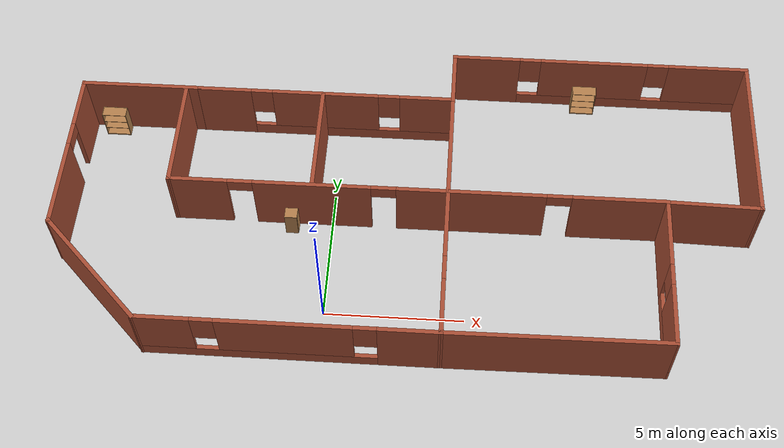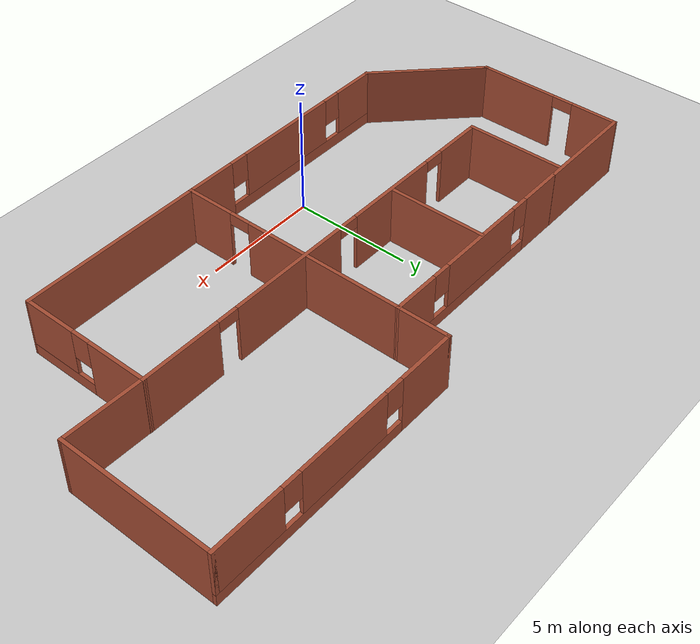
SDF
<sdf version="1.7">
 <world name="default">
  <light name="sun" type="directional">
   <pose>0 0 10 0 -0 0</pose>
   <diffuse>0.8 0.8 0.8 1</diffuse>
   <specular>0.2 0.2 0.2 1</specular>
   <attenuation>
    <range>1000</range>
    <constant>0.9</constant>
    <linear>0.01</linear>
    <quadratic>0.001</quadratic>
   </attenuation>
   <direction>-0.5 0.1 -0.9</direction>
   <spot><inner_angle>0</inner_angle><outer_angle>0</outer_angle><falloff>0</falloff></spot>
  </light>
  <model name="ground_plane">
   <static>1</static>
   <link name="link">
    <collision name="collision">
     <geometry><plane><normal>0 0 1</normal><size>100 100</size></plane></geometry>
     <surface>
      <contact><collide_bitmask>65535</collide_bitmask></contact>
      <friction><ode><mu>100</mu><mu2>50</mu2></ode></friction>
     </surface>
    </collision>
    <visual name="visual">
     <cast_shadows>0</cast_shadows>
     <geometry><plane><normal>0 0 1</normal><size>100 100</size></plane></geometry>
     <material>
      <script><uri>file://media/materials/scripts/gazebo.material</uri><name>Gazebo/Grey</name></script>
     </material>
    </visual>
   </link>
  </model>
  <gravity>0 0 -9.8</gravity>
  <magnetic_field>6e-06 2.3e-05 -4.2e-05</magnetic_field>
  <atmosphere type="adiabatic"/>
  <physics type="ode">
   <max_step_size>0.001</max_step_size>
   <real_time_factor>1</real_time_factor>
   <real_time_update_rate>1000</real_time_update_rate>
  </physics>
  <scene><ambient>0.4 0.4 0.4 1</ambient><background>0.7 0.7 0.7 1</background><shadows>1</shadows></scene>
  <spherical_coordinates>
   <surface_model>EARTH_WGS84</surface_model>
   <latitude_deg>0</latitude_deg>
   <longitude_deg>0</longitude_deg>
   <elevation>0</elevation>
   <heading_deg>0</heading_deg>
  </spherical_coordinates>
  <model name="simpleworld">
   <pose>2.77449 4.13979 0 0 -0 0</pose>
   <link name="Wall_10">
    <pose>-3.3355 3.88331 0 0 -0 0.001513</pose>
    <visual name="Wall_10_Visual_0">
     <pose>-3.83865 0 1.25 0 -0 0</pose>
     <geometry><box><size>2.02935 0.15 2.5</size></box></geometry>
     <material>
      <script><uri>file://media/materials/scripts/gazebo.material</uri><name>Gazebo/Bricks</name></script>
      <ambient>1 1 1 1</ambient>
     </material>
     <meta><layer>0</layer></meta>
    </visual>
    <collision name="Wall_10_Collision_0">
     <geometry><box><size>2.02935 0.15 2.5</size></box></geometry>
     <pose>-3.83865 0 1.25 0 -0 0</pose>
    </collision>
    <visual name="Wall_10_Visual_1">
     <pose>1.01467 0 0.25 0 -0 0</pose>
     <geometry><box><size>7.67729 0.15 0.5</size></box></geometry>
     <material>
      <script><uri>file://media/materials/scripts/gazebo.material</uri><name>Gazebo/Bricks</name></script>
      <ambient>1 1 1 1</ambient>
     </material>
     <meta><layer>0</layer></meta>
    </visual>
    <collision name="Wall_10_Collision_1">
     <geometry><box><size>7.67729 0.15 0.5</size></box></geometry>
     <pose>1.01467 0 0.25 0 -0 0</pose>
    </collision>
    <visual name="Wall_10_Visual_2">
     <pose>-0.026059 0 1.5 0 -0 0</pose>
     <geometry><box><size>3.99582 0.15 2</size></box></geometry>
     <material>
      <script><uri>file://media/materials/scripts/gazebo.material</uri><name>Gazebo/Bricks</name></script>
      <ambient>1 1 1 1</ambient>
     </material>
     <meta><layer>0</layer></meta>
    </visual>
    <collision name="Wall_10_Collision_2">
     <geometry><box><size>3.99582 0.15 2</size></box></geometry>
     <pose>-0.026059 0 1.5 0 -0 0</pose>
    </collision>
    <visual name="Wall_10_Visual_3">
     <pose>3.81259 0 1.5 0 -0 0</pose>
     <geometry><box><size>2.08147 0.15 2</size></box></geometry>
     <material>
      <script><uri>file://media/materials/scripts/gazebo.material</uri><name>Gazebo/Bricks</name></script>
      <ambient>1 1 1 1</ambient>
     </material>
     <meta><layer>0</layer></meta>
    </visual>
    <collision name="Wall_10_Collision_3">
     <geometry><box><size>2.08147 0.15 2</size></box></geometry>
     <pose>3.81259 0 1.5 0 -0 0</pose>
    </collision>
    <visual name="Wall_10_Visual_4">
     <pose>-2.42397 0 1.9 0 -0 0</pose>
     <geometry><box><size>0.8 0.15 1.2</size></box></geometry>
     <material>
      <script><uri>file://media/materials/scripts/gazebo.material</uri><name>Gazebo/Bricks</name></script>
      <ambient>1 1 1 1</ambient>
     </material>
     <meta><layer>0</layer></meta>
    </visual>
    <collision name="Wall_10_Collision_4">
     <geometry><box><size>0.8 0.15 1.2</size></box></geometry>
     <pose>-2.42397 0 1.9 0 -0 0</pose>
    </collision>
    <visual name="Wall_10_Visual_5">
     <pose>2.37185 0 1.9 0 -0 0</pose>
     <geometry><box><size>0.8 0.15 1.2</size></box></geometry>
     <material>
      <script><uri>file://media/materials/scripts/gazebo.material</uri><name>Gazebo/Bricks</name></script>
      <ambient>1 1 1 1</ambient>
     </material>
     <meta><layer>0</layer></meta>
    </visual>
    <collision name="Wall_10_Collision_5">
     <geometry><box><size>0.8 0.15 1.2</size></box></geometry>
     <pose>2.37185 0 1.9 0 -0 0</pose>
    </collision>
   </link>
   <link name="Wall_11">
    <pose>1.44282 -1.03447 0 0 -0 -1.5708</pose>
    <visual name="Wall_11_Visual_0">
     <pose>-1.52195 0 1.25 0 -0 0</pose>
     <geometry><box><size>6.95609 0.15 2.5</size></box></geometry>
     <material>
      <script><uri>file://media/materials/scripts/gazebo.material</uri><name>Gazebo/Bricks</name></script>
      <ambient>1 1 1 1</ambient>
     </material>
     <meta><layer>0</layer></meta>
    </visual>
    <collision name="Wall_11_Collision_0">
     <geometry><box><size>6.95609 0.15 2.5</size></box></geometry>
     <pose>-1.52195 0 1.25 0 -0 0</pose>
    </collision>
    <visual name="Wall_11_Visual_1">
     <pose>3.92805 0 1.25 0 -0 0</pose>
     <geometry><box><size>2.14391 0.15 2.5</size></box></geometry>
     <material>
      <script><uri>file://media/materials/scripts/gazebo.material</uri><name>Gazebo/Bricks</name></script>
      <ambient>1 1 1 1</ambient>
     </material>
     <meta><layer>0</layer></meta>
    </visual>
    <collision name="Wall_11_Collision_1">
     <geometry><box><size>2.14391 0.15 2.5</size></box></geometry>
     <pose>3.92805 0 1.25 0 -0 0</pose>
    </collision>
    <visual name="Wall_11_Visual_2">
     <pose>2.40609 0 2.25 0 -0 0</pose>
     <geometry><box><size>0.9 0.15 0.5</size></box></geometry>
     <material>
      <script><uri>file://media/materials/scripts/gazebo.material</uri><name>Gazebo/Bricks</name></script>
      <ambient>1 1 1 1</ambient>
     </material>
     <meta><layer>0</layer></meta>
    </visual>
    <collision name="Wall_11_Collision_2">
     <geometry><box><size>0.9 0.15 0.5</size></box></geometry>
     <pose>2.40609 0 2.25 0 -0 0</pose>
    </collision>
   </link>
   <link name="Wall_12">
    <pose>-3.73218 -5.95947 0 0 -0 3.14159</pose>
    <visual name="Wall_12_Visual_0">
     <pose>-4.14326 0 1.25 0 -0 0</pose>
     <geometry><box><size>2.21349 0.15 2.5</size></box></geometry>
     <material>
      <script><uri>file://media/materials/scripts/gazebo.material</uri><name>Gazebo/Bricks</name></script>
      <ambient>1 1 1 1</ambient>
     </material>
     <meta><layer>0</layer></meta>
    </visual>
    <collision name="Wall_12_Collision_0">
     <geometry><box><size>2.21349 0.15 2.5</size></box></geometry>
     <pose>-4.14326 0 1.25 0 -0 0</pose>
    </collision>
    <visual name="Wall_12_Visual_1">
     <pose>1.10674 0 0.25 0 -0 0</pose>
     <geometry><box><size>8.28651 0.15 0.5</size></box></geometry>
     <material>
      <script><uri>file://media/materials/scripts/gazebo.material</uri><name>Gazebo/Bricks</name></script>
      <ambient>1 1 1 1</ambient>
     </material>
     <meta><layer>0</layer></meta>
    </visual>
    <collision name="Wall_12_Collision_1">
     <geometry><box><size>8.28651 0.15 0.5</size></box></geometry>
     <pose>1.10674 0 0.25 0 -0 0</pose>
    </collision>
    <visual name="Wall_12_Visual_2">
     <pose>0.102389 0 1.5 0 -0 0</pose>
     <geometry><box><size>4.67781 0.15 2</size></box></geometry>
     <material>
      <script><uri>file://media/materials/scripts/gazebo.material</uri><name>Gazebo/Bricks</name></script>
      <ambient>1 1 1 1</ambient>
     </material>
     <meta><layer>0</layer></meta>
    </visual>
    <collision name="Wall_12_Collision_2">
     <geometry><box><size>4.67781 0.15 2</size></box></geometry>
     <pose>0.102389 0 1.5 0 -0 0</pose>
    </collision>
    <visual name="Wall_12_Visual_3">
     <pose>4.24565 0 1.5 0 -0 0</pose>
     <geometry><box><size>2.00871 0.15 2</size></box></geometry>
     <material>
      <script><uri>file://media/materials/scripts/gazebo.material</uri><name>Gazebo/Bricks</name></script>
      <ambient>1 1 1 1</ambient>
     </material>
     <meta><layer>0</layer></meta>
    </visual>
    <collision name="Wall_12_Collision_3">
     <geometry><box><size>2.00871 0.15 2</size></box></geometry>
     <pose>4.24565 0 1.5 0 -0 0</pose>
    </collision>
    <visual name="Wall_12_Visual_4">
     <pose>-2.63651 0 1.9 0 -0 0</pose>
     <geometry><box><size>0.8 0.15 1.2</size></box></geometry>
     <material>
      <script><uri>file://media/materials/scripts/gazebo.material</uri><name>Gazebo/Bricks</name></script>
      <ambient>1 1 1 1</ambient>
     </material>
     <meta><layer>0</layer></meta>
    </visual>
    <collision name="Wall_12_Collision_4">
     <geometry><box><size>0.8 0.15 1.2</size></box></geometry>
     <pose>-2.63651 0 1.9 0 -0 0</pose>
    </collision>
    <visual name="Wall_12_Visual_5">
     <pose>2.84129 0 1.9 0 -0 0</pose>
     <geometry><box><size>0.8 0.15 1.2</size></box></geometry>
     <material>
      <script><uri>file://media/materials/scripts/gazebo.material</uri><name>Gazebo/Bricks</name></script>
      <ambient>1 1 1 1</ambient>
     </material>
     <meta><layer>0</layer></meta>
    </visual>
    <collision name="Wall_12_Collision_5">
     <geometry><box><size>0.8 0.15 1.2</size></box></geometry>
     <pose>2.84129 0 1.9 0 -0 0</pose>
    </collision>
   </link>
   <link name="Wall_13">
    <collision name="Wall_13_Collision">
     <geometry><box><size>5.25 0.15 2.5</size></box></geometry>
     <pose>0 0 1.25 0 -0 0</pose>
    </collision>
    <visual name="Wall_13_Visual">
     <pose>0 0 1.25 0 -0 0</pose>
     <geometry><box><size>5.25 0.15 2.5</size></box></geometry>
     <material>
      <script><uri>file://media/materials/scripts/gazebo.material</uri><name>Gazebo/Bricks</name></script>
      <ambient>1 1 1 1</ambient>
     </material>
     <meta><layer>0</layer></meta>
    </visual>
    <pose>-10.7103 -4.15634 0 0 -0 2.35619</pose>
   </link>
   <link name="Wall_14">
    <pose>-12.5134 0.759277 0 0 -0 1.5708</pose>
    <visual name="Wall_14_Visual_0">
     <pose>-1.47366 0 1.25 0 -0 0</pose>
     <geometry><box><size>3.42767 0.15 2.5</size></box></geometry>
     <material>
      <script><uri>file://media/materials/scripts/gazebo.material</uri><name>Gazebo/Bricks</name></script>
      <ambient>1 1 1 1</ambient>
     </material>
     <meta><layer>0</layer></meta>
    </visual>
    <collision name="Wall_14_Collision_0">
     <geometry><box><size>3.42767 0.15 2.5</size></box></geometry>
     <pose>-1.47366 0 1.25 0 -0 0</pose>
    </collision>
    <visual name="Wall_14_Visual_1">
     <pose>2.16384 0 1.25 0 -0 0</pose>
     <geometry><box><size>2.04733 0.15 2.5</size></box></geometry>
     <material>
      <script><uri>file://media/materials/scripts/gazebo.material</uri><name>Gazebo/Bricks</name></script>
      <ambient>1 1 1 1</ambient>
     </material>
     <meta><layer>0</layer></meta>
    </visual>
    <collision name="Wall_14_Collision_1">
     <geometry><box><size>2.04733 0.15 2.5</size></box></geometry>
     <pose>2.16384 0 1.25 0 -0 0</pose>
    </collision>
    <visual name="Wall_14_Visual_2">
     <pose>0.690172 0 2.25 0 -0 0</pose>
     <geometry><box><size>0.9 0.15 0.5</size></box></geometry>
     <material>
      <script><uri>file://media/materials/scripts/gazebo.material</uri><name>Gazebo/Bricks</name></script>
      <ambient>1 1 1 1</ambient>
     </material>
     <meta><layer>0</layer></meta>
    </visual>
    <collision name="Wall_14_Collision_2">
     <geometry><box><size>0.9 0.15 0.5</size></box></geometry>
     <pose>0.690172 0 2.25 0 -0 0</pose>
    </collision>
   </link>
   <link name="Wall_15">
    <collision name="Wall_15_Collision">
     <geometry><box><size>4.52794 0.15 2.5</size></box></geometry>
     <pose>0 0 1.25 0 -0 0</pose>
    </collision>
    <visual name="Wall_15_Visual">
     <pose>0 0 1.25 0 -0 0</pose>
     <geometry><box><size>4.52794 0.15 2.5</size></box></geometry>
     <material>
      <script><uri>file://media/materials/scripts/gazebo.material</uri><name>Gazebo/Bricks</name></script>
      <ambient>1 1 1 1</ambient>
     </material>
     <meta><layer>0</layer></meta>
    </visual>
    <pose>-10.3245 3.87754 0 0 -0 0.002633</pose>
   </link>
   <link name="Wall_17">
    <collision name="Wall_17_Collision">
     <geometry><box><size>4.25 0.15 2.5</size></box></geometry>
     <pose>0 0 1.25 0 -0 0</pose>
    </collision>
    <visual name="Wall_17_Visual">
     <pose>0 0 1.25 0 -0 0</pose>
     <geometry><box><size>4.25 0.15 2.5</size></box></geometry>
     <material>
      <script><uri>file://media/materials/scripts/gazebo.material</uri><name>Gazebo/Bricks</name></script>
      <ambient>1 1 1 1</ambient>
     </material>
     <meta><layer>0</layer></meta>
    </visual>
    <pose>-8.6146 1.75039 0 0 -0 -1.5708</pose>
   </link>
   <link name="Wall_18">
    <pose>0.310398 -0.284861 0 0 -0 0.001653</pose>
    <visual name="Wall_18_Visual_0">
     <pose>-7.90218 0 1.25 0 -0 0</pose>
     <geometry><box><size>2.19564 0.15 2.5</size></box></geometry>
     <material>
      <script><uri>file://media/materials/scripts/gazebo.material</uri><name>Gazebo/Bricks</name></script>
      <ambient>1 1 1 1</ambient>
     </material>
     <meta><layer>0</layer></meta>
    </visual>
    <collision name="Wall_18_Collision_0">
     <geometry><box><size>2.19564 0.15 2.5</size></box></geometry>
     <pose>-7.90218 0 1.25 0 -0 0</pose>
    </collision>
    <visual name="Wall_18_Visual_1">
     <pose>-3.76951 0 1.25 0 -0 0</pose>
     <geometry><box><size>4.26971 0.15 2.5</size></box></geometry>
     <material>
      <script><uri>file://media/materials/scripts/gazebo.material</uri><name>Gazebo/Bricks</name></script>
      <ambient>1 1 1 1</ambient>
     </material>
     <meta><layer>0</layer></meta>
    </visual>
    <collision name="Wall_18_Collision_1">
     <geometry><box><size>4.26971 0.15 2.5</size></box></geometry>
     <pose>-3.76951 0 1.25 0 -0 0</pose>
    </collision>
    <visual name="Wall_18_Visual_2">
     <pose>1.95374 0 1.25 0 -0 0</pose>
     <geometry><box><size>5.37679 0.15 2.5</size></box></geometry>
     <material>
      <script><uri>file://media/materials/scripts/gazebo.material</uri><name>Gazebo/Bricks</name></script>
      <ambient>1 1 1 1</ambient>
     </material>
     <meta><layer>0</layer></meta>
    </visual>
    <collision name="Wall_18_Collision_2">
     <geometry><box><size>5.37679 0.15 2.5</size></box></geometry>
     <pose>1.95374 0 1.25 0 -0 0</pose>
    </collision>
    <visual name="Wall_18_Visual_3">
     <pose>7.27107 0 1.25 0 -0 0</pose>
     <geometry><box><size>3.45787 0.15 2.5</size></box></geometry>
     <material>
      <script><uri>file://media/materials/scripts/gazebo.material</uri><name>Gazebo/Bricks</name></script>
      <ambient>1 1 1 1</ambient>
     </material>
     <meta><layer>0</layer></meta>
    </visual>
    <collision name="Wall_18_Collision_3">
     <geometry><box><size>3.45787 0.15 2.5</size></box></geometry>
     <pose>7.27107 0 1.25 0 -0 0</pose>
    </collision>
    <visual name="Wall_18_Visual_4">
     <pose>-6.35436 0 2.25 0 -0 0</pose>
     <geometry><box><size>0.9 0.15 0.5</size></box></geometry>
     <material>
      <script><uri>file://media/materials/scripts/gazebo.material</uri><name>Gazebo/Bricks</name></script>
      <ambient>1 1 1 1</ambient>
     </material>
     <meta><layer>0</layer></meta>
    </visual>
    <collision name="Wall_18_Collision_4">
     <geometry><box><size>0.9 0.15 0.5</size></box></geometry>
     <pose>-6.35436 0 2.25 0 -0 0</pose>
    </collision>
    <visual name="Wall_18_Visual_5">
     <pose>-1.18465 0 2.25 0 -0 0</pose>
     <geometry><box><size>0.9 0.15 0.5</size></box></geometry>
     <material>
      <script><uri>file://media/materials/scripts/gazebo.material</uri><name>Gazebo/Bricks</name></script>
      <ambient>1 1 1 1</ambient>
     </material>
     <meta><layer>0</layer></meta>
    </visual>
    <collision name="Wall_18_Collision_5">
     <geometry><box><size>0.9 0.15 0.5</size></box></geometry>
     <pose>-1.18465 0 2.25 0 -0 0</pose>
    </collision>
    <visual name="Wall_18_Visual_6">
     <pose>5.09213 0 2.25 0 -0 0</pose>
     <geometry><box><size>0.9 0.15 0.5</size></box></geometry>
     <material>
      <script><uri>file://media/materials/scripts/gazebo.material</uri><name>Gazebo/Bricks</name></script>
      <ambient>1 1 1 1</ambient>
     </material>
     <meta><layer>0</layer></meta>
    </visual>
    <collision name="Wall_18_Collision_6">
     <geometry><box><size>0.9 0.15 0.5</size></box></geometry>
     <pose>5.09213 0 2.25 0 -0 0</pose>
    </collision>
   </link>
   <link name="Wall_19">
    <pose>9.2354 -3.08486 0 0 -0 -1.5708</pose>
    <visual name="Wall_19_Visual_0">
     <pose>-1.56451 0 1.25 0 -0 0</pose>
     <geometry><box><size>2.65048 0.15 2.5</size></box></geometry>
     <material>
      <script><uri>file://media/materials/scripts/gazebo.material</uri><name>Gazebo/Bricks</name></script>
      <ambient>1 1 1 1</ambient>
     </material>
     <meta><layer>0</layer></meta>
    </visual>
    <collision name="Wall_19_Collision_0">
     <geometry><box><size>2.65048 0.15 2.5</size></box></geometry>
     <pose>-1.56451 0 1.25 0 -0 0</pose>
    </collision>
    <visual name="Wall_19_Visual_1">
     <pose>1.32524 0 0.25 0 -0 0</pose>
     <geometry><box><size>3.12902 0.15 0.5</size></box></geometry>
     <material>
      <script><uri>file://media/materials/scripts/gazebo.material</uri><name>Gazebo/Bricks</name></script>
      <ambient>1 1 1 1</ambient>
     </material>
     <meta><layer>0</layer></meta>
    </visual>
    <collision name="Wall_19_Collision_1">
     <geometry><box><size>3.12902 0.15 0.5</size></box></geometry>
     <pose>1.32524 0 0.25 0 -0 0</pose>
    </collision>
    <visual name="Wall_19_Visual_2">
     <pose>1.72524 0 1.5 0 -0 0</pose>
     <geometry><box><size>2.32902 0.15 2</size></box></geometry>
     <material>
      <script><uri>file://media/materials/scripts/gazebo.material</uri><name>Gazebo/Bricks</name></script>
      <ambient>1 1 1 1</ambient>
     </material>
     <meta><layer>0</layer></meta>
    </visual>
    <collision name="Wall_19_Collision_2">
     <geometry><box><size>2.32902 0.15 2</size></box></geometry>
     <pose>1.72524 0 1.5 0 -0 0</pose>
    </collision>
    <visual name="Wall_19_Visual_3">
     <pose>0.160725 0 1.9 0 -0 0</pose>
     <geometry><box><size>0.8 0.15 1.2</size></box></geometry>
     <material>
      <script><uri>file://media/materials/scripts/gazebo.material</uri><name>Gazebo/Bricks</name></script>
      <ambient>1 1 1 1</ambient>
     </material>
     <meta><layer>0</layer></meta>
    </visual>
    <collision name="Wall_19_Collision_3">
     <geometry><box><size>0.8 0.15 1.2</size></box></geometry>
     <pose>0.160725 0 1.9 0 -0 0</pose>
    </collision>
   </link>
   <link name="Wall_20">
    <collision name="Wall_20_Collision">
     <geometry><box><size>7.94281 0.15 2.5</size></box></geometry>
     <pose>0 0 1.25 0 -0 0</pose>
    </collision>
    <visual name="Wall_20_Visual">
     <pose>0 0 1.25 0 -0 0</pose>
     <geometry><box><size>7.94281 0.15 2.5</size></box></geometry>
     <material>
      <script><uri>file://media/materials/scripts/gazebo.material</uri><name>Gazebo/Bricks</name></script>
      <ambient>1 1 1 1</ambient>
     </material>
     <meta><layer>0</layer></meta>
    </visual>
    <pose>5.33911 -5.92954 0 0 -0 -3.13391</pose>
   </link>
   <link name="Wall_22">
    <collision name="Wall_22_Collision">
     <geometry><box><size>4.25 0.15 2.5</size></box></geometry>
     <pose>0 0 1.25 0 -0 0</pose>
    </collision>
    <visual name="Wall_22_Visual">
     <pose>0 0 1.25 0 -0 0</pose>
     <geometry><box><size>4.25 0.15 2.5</size></box></geometry>
     <material>
      <script><uri>file://media/materials/scripts/gazebo.material</uri><name>Gazebo/Bricks</name></script>
      <ambient>1 1 1 1</ambient>
     </material>
     <meta><layer>0</layer></meta>
    </visual>
    <pose>-3.44479 1.78053 0 0 -0 1.5708</pose>
   </link>
   <link name="Wall_24">
    <collision name="Wall_24_Collision">
     <geometry><box><size>2.25 0.15 2.5</size></box></geometry>
     <pose>0 0 1.25 0 -0 0</pose>
    </collision>
    <visual name="Wall_24_Visual">
     <pose>0 0 1.25 0 -0 0</pose>
     <geometry><box><size>2.25 0.15 2.5</size></box></geometry>
     <material>
      <script><uri>file://media/materials/scripts/gazebo.material</uri><name>Gazebo/Bricks</name></script>
      <ambient>1 1 1 1</ambient>
     </material>
     <meta><layer>0</layer></meta>
    </visual>
    <pose>1.44282 4.94053 0 0 -0 1.5708</pose>
   </link>
   <link name="Wall_25">
    <pose>6.99282 5.99053 0 0 -0 0</pose>
    <visual name="Wall_25_Visual_0">
     <pose>-4.33984 0 1.25 0 -0 0</pose>
     <geometry><box><size>2.57032 0.15 2.5</size></box></geometry>
     <material>
      <script><uri>file://media/materials/scripts/gazebo.material</uri><name>Gazebo/Bricks</name></script>
      <ambient>1 1 1 1</ambient>
     </material>
     <meta><layer>0</layer></meta>
    </visual>
    <collision name="Wall_25_Collision_0">
     <geometry><box><size>2.57032 0.15 2.5</size></box></geometry>
     <pose>-4.33984 0 1.25 0 -0 0</pose>
    </collision>
    <visual name="Wall_25_Visual_1">
     <pose>1.28516 0 0.25 0 -0 0</pose>
     <geometry><box><size>8.67968 0.15 0.5</size></box></geometry>
     <material>
      <script><uri>file://media/materials/scripts/gazebo.material</uri><name>Gazebo/Bricks</name></script>
      <ambient>1 1 1 1</ambient>
     </material>
     <meta><layer>0</layer></meta>
    </visual>
    <collision name="Wall_25_Collision_1">
     <geometry><box><size>8.67968 0.15 0.5</size></box></geometry>
     <pose>1.28516 0 0.25 0 -0 0</pose>
    </collision>
    <visual name="Wall_25_Visual_2">
     <pose>-0.223764 0 1.5 0 -0 0</pose>
     <geometry><box><size>4.06183 0.15 2</size></box></geometry>
     <material>
      <script><uri>file://media/materials/scripts/gazebo.material</uri><name>Gazebo/Bricks</name></script>
      <ambient>1 1 1 1</ambient>
     </material>
     <meta><layer>0</layer></meta>
    </visual>
    <collision name="Wall_25_Collision_2">
     <geometry><box><size>4.06183 0.15 2</size></box></geometry>
     <pose>-0.223764 0 1.5 0 -0 0</pose>
    </collision>
    <visual name="Wall_25_Visual_3">
     <pose>4.11608 0 1.5 0 -0 0</pose>
     <geometry><box><size>3.01785 0.15 2</size></box></geometry>
     <material>
      <script><uri>file://media/materials/scripts/gazebo.material</uri><name>Gazebo/Bricks</name></script>
      <ambient>1 1 1 1</ambient>
     </material>
     <meta><layer>0</layer></meta>
    </visual>
    <collision name="Wall_25_Collision_3">
     <geometry><box><size>3.01785 0.15 2</size></box></geometry>
     <pose>4.11608 0 1.5 0 -0 0</pose>
    </collision>
    <visual name="Wall_25_Visual_4">
     <pose>-2.65468 0 1.9 0 -0 0</pose>
     <geometry><box><size>0.8 0.15 1.2</size></box></geometry>
     <material>
      <script><uri>file://media/materials/scripts/gazebo.material</uri><name>Gazebo/Bricks</name></script>
      <ambient>1 1 1 1</ambient>
     </material>
     <meta><layer>0</layer></meta>
    </visual>
    <collision name="Wall_25_Collision_4">
     <geometry><box><size>0.8 0.15 1.2</size></box></geometry>
     <pose>-2.65468 0 1.9 0 -0 0</pose>
    </collision>
    <visual name="Wall_25_Visual_5">
     <pose>2.20715 0 1.9 0 -0 0</pose>
     <geometry><box><size>0.8 0.15 1.2</size></box></geometry>
     <material>
      <script><uri>file://media/materials/scripts/gazebo.material</uri><name>Gazebo/Bricks</name></script>
      <ambient>1 1 1 1</ambient>
     </material>
     <meta><layer>0</layer></meta>
    </visual>
    <collision name="Wall_25_Collision_5">
     <geometry><box><size>0.8 0.15 1.2</size></box></geometry>
     <pose>2.20715 0 1.9 0 -0 0</pose>
    </collision>
   </link>
   <link name="Wall_26">
    <collision name="Wall_26_Collision">
     <geometry><box><size>6.5 0.15 2.5</size></box></geometry>
     <pose>0 0 1.25 0 -0 0</pose>
    </collision>
    <visual name="Wall_26_Visual">
     <pose>0 0 1.25 0 -0 0</pose>
     <geometry><box><size>6.5 0.15 2.5</size></box></geometry>
     <material>
      <script><uri>file://media/materials/scripts/gazebo.material</uri><name>Gazebo/Bricks</name></script>
      <ambient>1 1 1 1</ambient>
     </material>
     <meta><layer>0</layer></meta>
    </visual>
    <pose>12.5428 2.81553 0 0 -0 -1.5708</pose>
   </link>
   <link name="Wall_27">
    <collision name="Wall_27_Collision">
     <geometry><box><size>3.45826 0.15 2.5</size></box></geometry>
     <pose>0 0 1.25 0 -0 0</pose>
    </collision>
    <visual name="Wall_27_Visual">
     <pose>0 0 1.25 0 -0 0</pose>
     <geometry><box><size>3.45826 0.15 2.5</size></box></geometry>
     <material>
      <script><uri>file://media/materials/scripts/gazebo.material</uri><name>Gazebo/Bricks</name></script>
      <ambient>1 1 1 1</ambient>
     </material>
     <meta><layer>0</layer></meta>
    </visual>
    <pose>10.8891 -0.322164 0 0 -0 3.11904</pose>
   </link>
   <static>1</static>
  </model>
  <model name="bookshelf">
   <static>1</static>
   <link name="link">
    <inertial><mass>1</mass></inertial>
    <collision name="back">
     <pose>0 0.005 0.6 0 -0 0</pose>
     <geometry><box><size>0.9 0.01 1.2</size></box></geometry>
    </collision>
    <visual name="visual1">
     <pose>0 0.005 0.6 0 -0 0</pose>
     <geometry><box><size>0.9 0.01 1.2</size></box></geometry>
     <material>
      <script><uri>file://media/materials/scripts/gazebo.material</uri><name>Gazebo/Wood</name></script>
     </material>
    </visual>
    <collision name="left_side">
     <pose>0.45 -0.195 0.6 0 -0 0</pose>
     <geometry><box><size>0.02 0.4 1.2</size></box></geometry>
    </collision>
    <visual name="visual2">
     <pose>0.45 -0.195 0.6 0 -0 0</pose>
     <geometry><box><size>0.02 0.4 1.2</size></box></geometry>
     <material>
      <script><uri>file://media/materials/scripts/gazebo.material</uri><name>Gazebo/Wood</name></script>
     </material>
    </visual>
    <collision name="right_side">
     <pose>-0.45 -0.195 0.6 0 -0 0</pose>
     <geometry><box><size>0.02 0.4 1.2</size></box></geometry>
    </collision>
    <visual name="visual3">
     <pose>-0.45 -0.195 0.6 0 -0 0</pose>
     <geometry><box><size>0.02 0.4 1.2</size></box></geometry>
     <material>
      <script><uri>file://media/materials/scripts/gazebo.material</uri><name>Gazebo/Wood</name></script>
     </material>
    </visual>
    <collision name="bottom">
     <pose>0 -0.195 0.03 0 -0 0</pose>
     <geometry><box><size>0.88 0.4 0.06</size></box></geometry>
    </collision>
    <visual name="visual4">
     <pose>0 -0.195 0.03 0 -0 0</pose>
     <geometry><box><size>0.88 0.4 0.06</size></box></geometry>
     <material>
      <script><uri>file://media/materials/scripts/gazebo.material</uri><name>Gazebo/Wood</name></script>
     </material>
    </visual>
    <collision name="top">
     <pose>0 -0.195 1.19 0 -0 0</pose>
     <geometry><box><size>0.88 0.4 0.02</size></box></geometry>
    </collision>
    <visual name="visual5">
     <pose>0 -0.195 1.19 0 -0 0</pose>
     <geometry><box><size>0.88 0.4 0.02</size></box></geometry>
     <material>
      <script><uri>file://media/materials/scripts/gazebo.material</uri><name>Gazebo/Wood</name></script>
     </material>
    </visual>
    <collision name="low_shelf">
     <pose>0 -0.195 0.43 0 -0 0</pose>
     <geometry><box><size>0.88 0.4 0.02</size></box></geometry>
    </collision>
    <visual name="visual6">
     <pose>0 -0.195 0.43 0 -0 0</pose>
     <geometry><box><size>0.88 0.4 0.02</size></box></geometry>
     <material>
      <script><uri>file://media/materials/scripts/gazebo.material</uri><name>Gazebo/Wood</name></script>
     </material>
    </visual>
    <collision name="high_shelf">
     <pose>0 -0.195 0.8 0 -0 0</pose>
     <geometry><box><size>0.88 0.4 0.02</size></box></geometry>
    </collision>
    <visual name="visual7">
     <pose>0 -0.195 0.8 0 -0 0</pose>
     <geometry><box><size>0.88 0.4 0.02</size></box></geometry>
     <material>
      <script><uri>file://media/materials/scripts/gazebo.material</uri><name>Gazebo/Wood</name></script>
     </material>
    </visual>
   </link>
   <pose>-8.7726 7.89167 0 0 -0 0</pose>
  </model>
  <model name="cabinet">
   <static>1</static>
   <link name="cabinet_bottom_plate">
    <inertial>
     <pose>0 0 -1 0 -0 0</pose>
     <inertia><ixx>2.05</ixx><ixy>0</ixy><ixz>0</ixz><iyy>2.05</iyy><iyz>0</iyz><izz>2.05</izz></inertia>
     <mass>25</mass>
    </inertial>
    <collision name="cabinet_bottom_plate_geom">
     <pose>0 0 0.01 0 -0 0</pose>
     <geometry><box><size>0.45 0.45 0.02</size></box></geometry>
    </collision>
    <visual name="cabinet_bottom_plate_geom_visual">
     <pose>0 0 0.01 0 -0 0</pose>
     <geometry><box><size>0.45 0.45 0.02</size></box></geometry>
     <material>
      <script><uri>file://media/materials/scripts/gazebo.material</uri><name>Gazebo/Wood</name></script>
     </material>
    </visual>
    <collision name="cabinet_bottom_plate_geom_cabinet_back_plate">
     <pose>0.235 0 0.51 0 -0 0</pose>
     <geometry><box><size>0.02 0.45 1.02</size></box></geometry>
    </collision>
    <visual name="cabinet_bottom_plate_geom_cabinet_back_plate_visual">
     <pose>0.235 0 0.51 0 -0 0</pose>
     <geometry><box><size>0.02 0.45 1.02</size></box></geometry>
     <material>
      <script><uri>file://media/materials/scripts/gazebo.material</uri><name>Gazebo/Wood</name></script>
     </material>
    </visual>
    <collision name="cabinet_bottom_plate_geom_cabinet_left_plate">
     <pose>0 0.235 0.51 0 -0 0</pose>
     <geometry><box><size>0.45 0.02 1.02</size></box></geometry>
    </collision>
    <visual name="cabinet_bottom_plate_geom_cabinet_left_plate_visual">
     <pose>0 0.235 0.51 0 -0 0</pose>
     <geometry><box><size>0.45 0.02 1.02</size></box></geometry>
     <material>
      <script><uri>file://media/materials/scripts/gazebo.material</uri><name>Gazebo/Wood</name></script>
     </material>
    </visual>
    <collision name="cabinet_bottom_plate_geom_cabinet_middle_plate">
     <pose>0 0 0.51 0 -0 0</pose>
     <geometry><box><size>0.45 0.45 0.02</size></box></geometry>
    </collision>
    <visual name="cabinet_bottom_plate_geom_cabinet_middle_plate_visual">
     <pose>0 0 0.51 0 -0 0</pose>
     <geometry><box><size>0.45 0.45 0.02</size></box></geometry>
     <material>
      <script><uri>file://media/materials/scripts/gazebo.material</uri><name>Gazebo/Wood</name></script>
     </material>
    </visual>
    <collision name="cabinet_bottom_plate_geom_cabinet_right_plate">
     <pose>0 -0.235 0.51 0 -0 0</pose>
     <geometry><box><size>0.45 0.02 1.02</size></box></geometry>
    </collision>
    <visual name="cabinet_bottom_plate_geom_cabinet_right_plate_visual">
     <pose>0 -0.235 0.51 0 -0 0</pose>
     <geometry><box><size>0.45 0.02 1.02</size></box></geometry>
     <material>
      <script><uri>file://media/materials/scripts/gazebo.material</uri><name>Gazebo/Wood</name></script>
     </material>
    </visual>
    <collision name="cabinet_bottom_plate_geom_cabinet_top_plate">
     <pose>0 0 1.01 0 -0 0</pose>
     <geometry><box><size>0.45 0.45 0.02</size></box></geometry>
    </collision>
    <visual name="cabinet_bottom_plate_geom_cabinet_top_plate_visual">
     <pose>0 0 1.01 0 -0 0</pose>
     <geometry><box><size>0.45 0.45 0.02</size></box></geometry>
     <material>
      <script><uri>file://media/materials/scripts/gazebo.material</uri><name>Gazebo/Wood</name></script>
     </material>
    </visual>
   </link>
   <pose>-1.49355 3.59154 0 0 -0 0</pose>
  </model>
  <model name="bookshelf_0">
   <static>1</static>
   <link name="link">
    <inertial><mass>1</mass></inertial>
    <collision name="back">
     <pose>0 0.005 0.6 0 -0 0</pose>
     <geometry><box><size>0.9 0.01 1.2</size></box></geometry>
    </collision>
    <visual name="visual1">
     <pose>0 0.005 0.6 0 -0 0</pose>
     <geometry><box><size>0.9 0.01 1.2</size></box></geometry>
     <material>
      <script><uri>file://media/materials/scripts/gazebo.material</uri><name>Gazebo/Wood</name></script>
     </material>
    </visual>
    <collision name="left_side">
     <pose>0.45 -0.195 0.6 0 -0 0</pose>
     <geometry><box><size>0.02 0.4 1.2</size></box></geometry>
    </collision>
    <visual name="visual2">
     <pose>0.45 -0.195 0.6 0 -0 0</pose>
     <geometry><box><size>0.02 0.4 1.2</size></box></geometry>
     <material>
      <script><uri>file://media/materials/scripts/gazebo.material</uri><name>Gazebo/Wood</name></script>
     </material>
    </visual>
    <collision name="right_side">
     <pose>-0.45 -0.195 0.6 0 -0 0</pose>
     <geometry><box><size>0.02 0.4 1.2</size></box></geometry>
    </collision>
    <visual name="visual3">
     <pose>-0.45 -0.195 0.6 0 -0 0</pose>
     <geometry><box><size>0.02 0.4 1.2</size></box></geometry>
     <material>
      <script><uri>file://media/materials/scripts/gazebo.material</uri><name>Gazebo/Wood</name></script>
     </material>
    </visual>
    <collision name="bottom">
     <pose>0 -0.195 0.03 0 -0 0</pose>
     <geometry><box><size>0.88 0.4 0.06</size></box></geometry>
    </collision>
    <visual name="visual4">
     <pose>0 -0.195 0.03 0 -0 0</pose>
     <geometry><box><size>0.88 0.4 0.06</size></box></geometry>
     <material>
      <script><uri>file://media/materials/scripts/gazebo.material</uri><name>Gazebo/Wood</name></script>
     </material>
    </visual>
    <collision name="top">
     <pose>0 -0.195 1.19 0 -0 0</pose>
     <geometry><box><size>0.88 0.4 0.02</size></box></geometry>
    </collision>
    <visual name="visual5">
     <pose>0 -0.195 1.19 0 -0 0</pose>
     <geometry><box><size>0.88 0.4 0.02</size></box></geometry>
     <material>
      <script><uri>file://media/materials/scripts/gazebo.material</uri><name>Gazebo/Wood</name></script>
     </material>
    </visual>
    <collision name="low_shelf">
     <pose>0 -0.195 0.43 0 -0 0</pose>
     <geometry><box><size>0.88 0.4 0.02</size></box></geometry>
    </collision>
    <visual name="visual6">
     <pose>0 -0.195 0.43 0 -0 0</pose>
     <geometry><box><size>0.88 0.4 0.02</size></box></geometry>
     <material>
      <script><uri>file://media/materials/scripts/gazebo.material</uri><name>Gazebo/Wood</name></script>
     </material>
    </visual>
    <collision name="high_shelf">
     <pose>0 -0.195 0.8 0 -0 0</pose>
     <geometry><box><size>0.88 0.4 0.02</size></box></geometry>
    </collision>
    <visual name="visual7">
     <pose>0 -0.195 0.8 0 -0 0</pose>
     <geometry><box><size>0.88 0.4 0.02</size></box></geometry>
     <material>
      <script><uri>file://media/materials/scripts/gazebo.material</uri><name>Gazebo/Wood</name></script>
     </material>
    </visual>
   </link>
   <pose>9.30176 10.0006 0 0 -0 0</pose>
  </model>
 </world>
</sdf>
